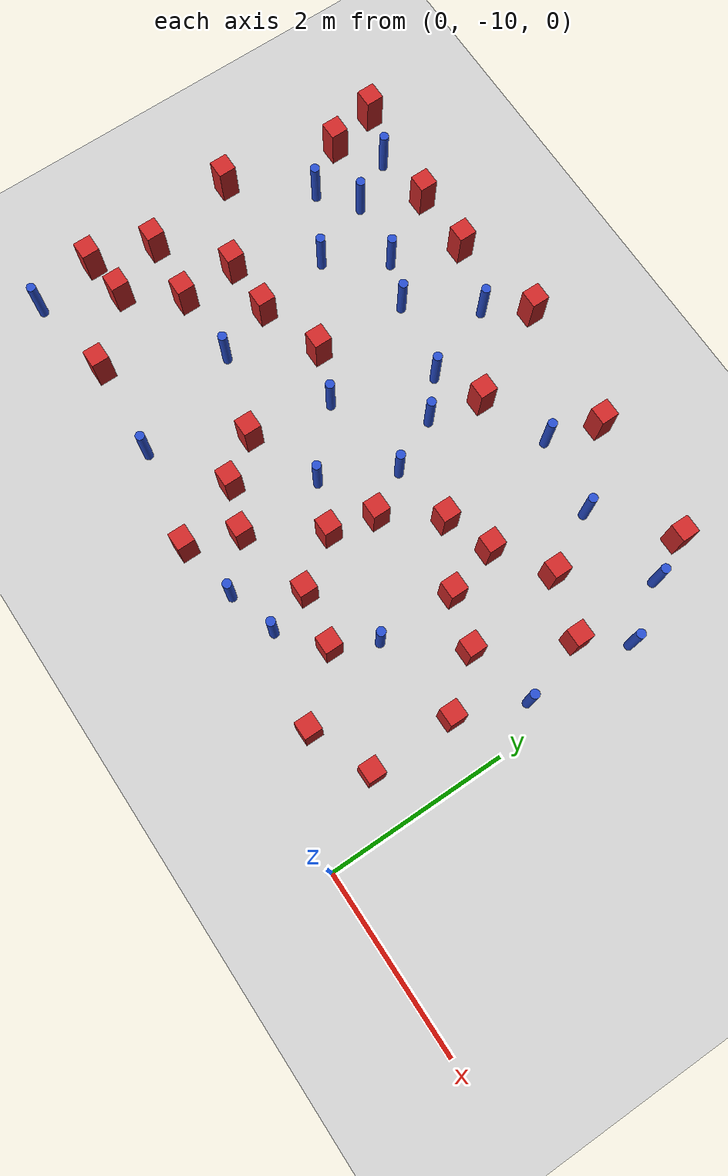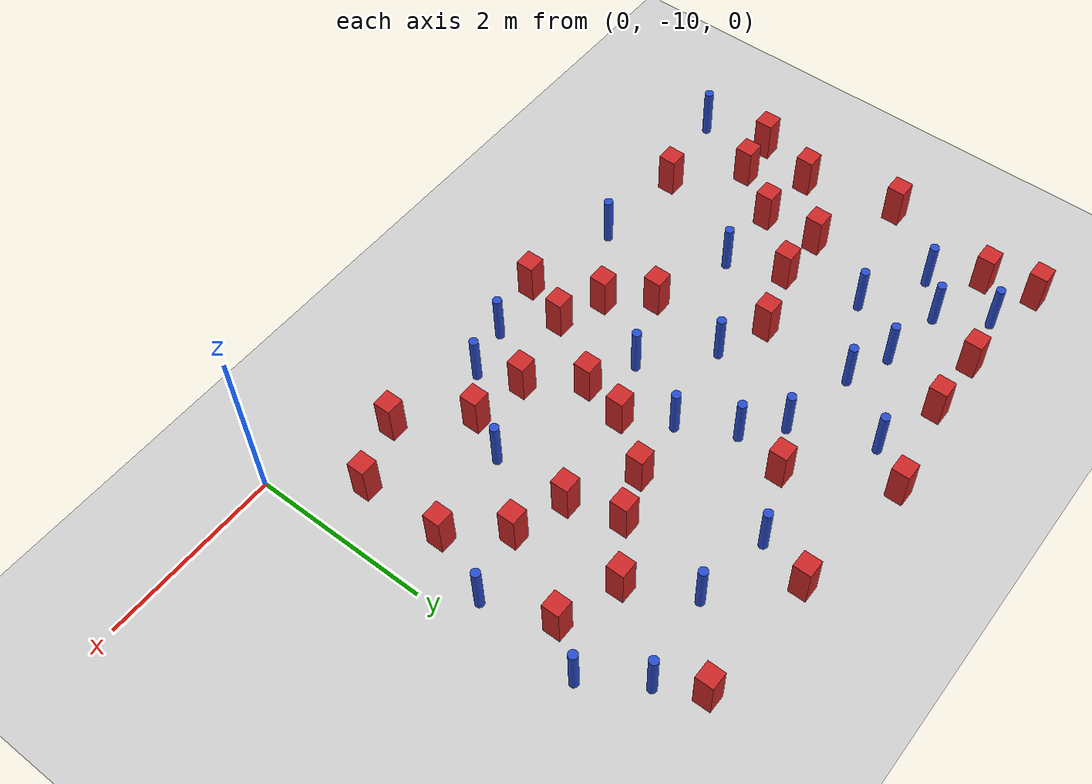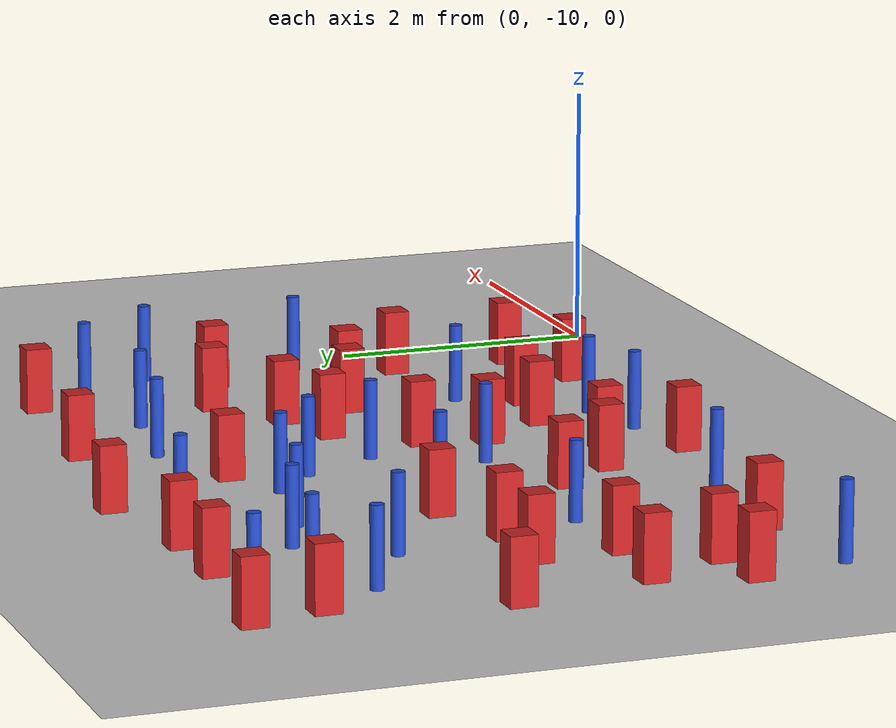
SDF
<sdf version="1.6">
 <world name="default">
  <model name="ground_plane">
   <static>1</static>
   <link name="link">
    <collision name="collision">
     <geometry><plane><normal>0 0 1</normal><size>100 100</size></plane></geometry>
     <surface><friction><ode><mu>100</mu><mu2>50</mu2></ode></friction></surface>
    </collision>
    <visual name="visual">
     <cast_shadows>0</cast_shadows>
     <geometry><plane><normal>0 0 1</normal><size>100 100</size></plane></geometry>
     <material>
      <ambient>1.0 1.0 1.0 1.0</ambient>
      <diffuse>0.8 0.8 0.8 1.0</diffuse>
      <specular>0.01 0.01 0.01 1.000000</specular>
     </material>
    </visual>
   </link>
  </model>
  <model name="square_post_obstacle15">
   <static>true</static>
   <pose>-2.44196828047 -8.70239548351 8.22691968438e-08 7.22125133819e-06 -7.54495500217e-07 2.29674213826e-05</pose>
   <link name="link">
    <pose>0 0 0.25 0 -0 0</pose>
    <inertial>
     <mass>100</mass>
     <inertia>
      <ixx>0.166667</ixx>
      <ixy>0</ixy>
      <ixz>0</ixz>
      <iyy>0.166667</iyy>
      <iyz>0</iyz>
      <izz>0.166667</izz>
     </inertia>
    </inertial>
    <collision name="collision"><geometry><box><size>.2 .2 .5</size></box></geometry></collision>
    <visual name="visual">
     <geometry><box><size>.2 .2 .5</size></box></geometry>
     <material>
      <script><name>Gazebo/Red</name><uri>file://media/materials/scripts/gazebo.material</uri></script>
     </material>
    </visual>
   </link>
  </model>
  <model name="square_post_obstacle24">
   <static>true</static>
   <pose>-2.24350808111 -5.14395207537 8.22691968438e-08 7.2212513382e-06 -7.54495500217e-07 2.29674213826e-05</pose>
   <link name="link">
    <pose>0 0 0.25 0 -0 0</pose>
    <inertial>
     <mass>100</mass>
     <inertia>
      <ixx>0.166667</ixx>
      <ixy>0</ixy>
      <ixz>0</ixz>
      <iyy>0.166667</iyy>
      <iyz>0</iyz>
      <izz>0.166667</izz>
     </inertia>
    </inertial>
    <collision name="collision"><geometry><box><size>.2 .2 .5</size></box></geometry></collision>
    <visual name="visual">
     <geometry><box><size>.2 .2 .5</size></box></geometry>
     <material>
      <script><name>Gazebo/Red</name><uri>file://media/materials/scripts/gazebo.material</uri></script>
     </material>
    </visual>
   </link>
  </model>
  <model name="pole_obstacle19">
   <static>true</static>
   <pose>-0.285638210329 -7.47282447171 2.88873142074e-08 -9.90536689618e-09 4.60219948994e-07 -1.20965994956e-07</pose>
   <link name="link">
    <pose>0 0 0.3 0 -0 0</pose>
    <inertial>
     <mass>1</mass>
     <inertia><ixx>0.145833</ixx><ixy>0</ixy><ixz>0</ixz><iyy>0.145833</iyy><iyz>0</iyz><izz>0.125</izz></inertia>
    </inertial>
    <collision name="collision">
     <geometry><cylinder><radius>0.05</radius><length>.6</length></cylinder></geometry>
    </collision>
    <visual name="visual">
     <geometry><cylinder><radius>0.05</radius><length>.6</length></cylinder></geometry>
     <material>
      <script><name>Gazebo/Blue</name><uri>file://media/materials/scripts/gazebo.material</uri></script>
     </material>
    </visual>
   </link>
  </model>
  <model name="pole_obstacle27">
   <static>true</static>
   <pose>-3.66514486487 -6.24917587034 2.88873142074e-08 -9.90536689859e-09 4.60219948989e-07 -1.20965994961e-07</pose>
   <link name="link">
    <pose>0 0 0.3 0 -0 0</pose>
    <inertial>
     <mass>1</mass>
     <inertia><ixx>0.145833</ixx><ixy>0</ixy><ixz>0</ixz><iyy>0.145833</iyy><iyz>0</iyz><izz>0.125</izz></inertia>
    </inertial>
    <collision name="collision">
     <geometry><cylinder><radius>0.05</radius><length>.6</length></cylinder></geometry>
    </collision>
    <visual name="visual">
     <geometry><cylinder><radius>0.05</radius><length>.6</length></cylinder></geometry>
     <material>
      <script><name>Gazebo/Blue</name><uri>file://media/materials/scripts/gazebo.material</uri></script>
     </material>
    </visual>
   </link>
  </model>
  <model name="pole_obstacle29">
   <static>true</static>
   <pose>-2.99520815477 -7.17016514407 2.88873142074e-08 -9.90536689859e-09 4.60219948989e-07 -1.20965994961e-07</pose>
   <link name="link">
    <pose>0 0 0.3 0 -0 0</pose>
    <inertial>
     <mass>1</mass>
     <inertia><ixx>0.145833</ixx><ixy>0</ixy><ixz>0</ixz><iyy>0.145833</iyy><iyz>0</iyz><izz>0.125</izz></inertia>
    </inertial>
    <collision name="collision">
     <geometry><cylinder><radius>0.05</radius><length>.6</length></cylinder></geometry>
    </collision>
    <visual name="visual">
     <geometry><cylinder><radius>0.05</radius><length>.6</length></cylinder></geometry>
     <material>
      <script><name>Gazebo/Blue</name><uri>file://media/materials/scripts/gazebo.material</uri></script>
     </material>
    </visual>
   </link>
  </model>
  <model name="square_post_obstacle36">
   <static>true</static>
   <pose>-3.16164344425 -6.00982008556 8.22691968438e-08 7.22125133819e-06 -7.54495500217e-07 2.29674213826e-05</pose>
   <link name="link">
    <pose>0 0 0.25 0 -0 0</pose>
    <inertial>
     <mass>100</mass>
     <inertia>
      <ixx>0.166667</ixx>
      <ixy>0</ixy>
      <ixz>0</ixz>
      <iyy>0.166667</iyy>
      <iyz>0</iyz>
      <izz>0.166667</izz>
     </inertia>
    </inertial>
    <collision name="collision"><geometry><box><size>.2 .2 .5</size></box></geometry></collision>
    <visual name="visual">
     <geometry><box><size>.2 .2 .5</size></box></geometry>
     <material>
      <script><name>Gazebo/Red</name><uri>file://media/materials/scripts/gazebo.material</uri></script>
     </material>
    </visual>
   </link>
  </model>
  <model name="pole_obstacle43">
   <static>true</static>
   <pose>-4.54498802081 -6.07642919012 2.88873142074e-08 -9.90536690842e-09 4.60219948965e-07 -1.20965994976e-07</pose>
   <link name="link">
    <pose>0 0 0.3 0 -0 0</pose>
    <inertial>
     <mass>1</mass>
     <inertia><ixx>0.145833</ixx><ixy>0</ixy><ixz>0</ixz><iyy>0.145833</iyy><iyz>0</iyz><izz>0.125</izz></inertia>
    </inertial>
    <collision name="collision">
     <geometry><cylinder><radius>0.05</radius><length>.6</length></cylinder></geometry>
    </collision>
    <visual name="visual">
     <geometry><cylinder><radius>0.05</radius><length>.6</length></cylinder></geometry>
     <material>
      <script><name>Gazebo/Blue</name><uri>file://media/materials/scripts/gazebo.material</uri></script>
     </material>
    </visual>
   </link>
  </model>
  <model name="square_post_obstacle41">
   <static>true</static>
   <pose>-0.527623908564 -6.72911399481 8.22691968438e-08 7.2212513382e-06 -7.54495500217e-07 2.29674213826e-05</pose>
   <link name="link">
    <pose>0 0 0.25 0 -0 0</pose>
    <inertial>
     <mass>100</mass>
     <inertia>
      <ixx>0.166667</ixx>
      <ixy>0</ixy>
      <ixz>0</ixz>
      <iyy>0.166667</iyy>
      <iyz>0</iyz>
      <izz>0.166667</izz>
     </inertia>
    </inertial>
    <collision name="collision"><geometry><box><size>.2 .2 .5</size></box></geometry></collision>
    <visual name="visual">
     <geometry><box><size>.2 .2 .5</size></box></geometry>
     <material>
      <script><name>Gazebo/Red</name><uri>file://media/materials/scripts/gazebo.material</uri></script>
     </material>
    </visual>
   </link>
  </model>
  <model name="square_post_obstacle43">
   <static>true</static>
   <pose>-0.570156672937 -9.15295373574 8.22691968438e-08 7.22125133819e-06 -7.54495500217e-07 2.29674213826e-05</pose>
   <link name="link">
    <pose>0 0 0.25 0 -0 0</pose>
    <inertial>
     <mass>100</mass>
     <inertia>
      <ixx>0.166667</ixx>
      <ixy>0</ixy>
      <ixz>0</ixz>
      <iyy>0.166667</iyy>
      <iyz>0</iyz>
      <izz>0.166667</izz>
     </inertia>
    </inertial>
    <collision name="collision"><geometry><box><size>.2 .2 .5</size></box></geometry></collision>
    <visual name="visual">
     <geometry><box><size>.2 .2 .5</size></box></geometry>
     <material>
      <script><name>Gazebo/Red</name><uri>file://media/materials/scripts/gazebo.material</uri></script>
     </material>
    </visual>
   </link>
  </model>
  <model name="square_post_obstacle55">
   <static>true</static>
   <pose>-1.19929644182 -6.50464743947 8.22691968438e-08 7.2212513382e-06 -7.54495500217e-07 2.29674213826e-05</pose>
   <link name="link">
    <pose>0 0 0.25 0 -0 0</pose>
    <inertial>
     <mass>100</mass>
     <inertia>
      <ixx>0.166667</ixx>
      <ixy>0</ixy>
      <ixz>0</ixz>
      <iyy>0.166667</iyy>
      <iyz>0</iyz>
      <izz>0.166667</izz>
     </inertia>
    </inertial>
    <collision name="collision"><geometry><box><size>.2 .2 .5</size></box></geometry></collision>
    <visual name="visual">
     <geometry><box><size>.2 .2 .5</size></box></geometry>
     <material>
      <script><name>Gazebo/Red</name><uri>file://media/materials/scripts/gazebo.material</uri></script>
     </material>
    </visual>
   </link>
  </model>
  <model name="pole_obstacle56">
   <static>true</static>
   <pose>-1.54996020465 -5.83506203627 2.88873142074e-08 -9.90536689852e-09 4.60219948989e-07 -1.2096599496e-07</pose>
   <link name="link">
    <pose>0 0 0.3 0 -0 0</pose>
    <inertial>
     <mass>1</mass>
     <inertia><ixx>0.145833</ixx><ixy>0</ixy><ixz>0</ixz><iyy>0.145833</iyy><iyz>0</iyz><izz>0.125</izz></inertia>
    </inertial>
    <collision name="collision">
     <geometry><cylinder><radius>0.05</radius><length>.6</length></cylinder></geometry>
    </collision>
    <visual name="visual">
     <geometry><cylinder><radius>0.05</radius><length>.6</length></cylinder></geometry>
     <material>
      <script><name>Gazebo/Blue</name><uri>file://media/materials/scripts/gazebo.material</uri></script>
     </material>
    </visual>
   </link>
  </model>
  <model name="square_post_obstacle62">
   <static>true</static>
   <pose>-6.32162918469 -8.54207892889 8.22691968438e-08 7.22125133819e-06 -7.54495500217e-07 2.29674213826e-05</pose>
   <link name="link">
    <pose>0 0 0.25 0 -0 0</pose>
    <inertial>
     <mass>100</mass>
     <inertia>
      <ixx>0.166667</ixx>
      <ixy>0</ixy>
      <ixz>0</ixz>
      <iyy>0.166667</iyy>
      <iyz>0</iyz>
      <izz>0.166667</izz>
     </inertia>
    </inertial>
    <collision name="collision"><geometry><box><size>.2 .2 .5</size></box></geometry></collision>
    <visual name="visual">
     <geometry><box><size>.2 .2 .5</size></box></geometry>
     <material>
      <script><name>Gazebo/Red</name><uri>file://media/materials/scripts/gazebo.material</uri></script>
     </material>
    </visual>
   </link>
  </model>
  <model name="square_post_obstacle68">
   <static>true</static>
   <pose>-5.3094120917 -7.35153134926 8.22691968438e-08 7.22125133819e-06 -7.54495500217e-07 2.29674213826e-05</pose>
   <link name="link">
    <pose>0 0 0.25 0 -0 0</pose>
    <inertial>
     <mass>100</mass>
     <inertia>
      <ixx>0.166667</ixx>
      <ixy>0</ixy>
      <ixz>0</ixz>
      <iyy>0.166667</iyy>
      <iyz>0</iyz>
      <izz>0.166667</izz>
     </inertia>
    </inertial>
    <collision name="collision"><geometry><box><size>.2 .2 .5</size></box></geometry></collision>
    <visual name="visual">
     <geometry><box><size>.2 .2 .5</size></box></geometry>
     <material>
      <script><name>Gazebo/Red</name><uri>file://media/materials/scripts/gazebo.material</uri></script>
     </material>
    </visual>
   </link>
  </model>
  <model name="square_post_obstacle69">
   <static>true</static>
   <pose>-1.25324452458 -9.43163976762 8.22691968438e-08 7.2212513382e-06 -7.54495500217e-07 2.29674213826e-05</pose>
   <link name="link">
    <pose>0 0 0.25 0 -0 0</pose>
    <inertial>
     <mass>100</mass>
     <inertia>
      <ixx>0.166667</ixx>
      <ixy>0</ixy>
      <ixz>0</ixz>
      <iyy>0.166667</iyy>
      <iyz>0</iyz>
      <izz>0.166667</izz>
     </inertia>
    </inertial>
    <collision name="collision"><geometry><box><size>.2 .2 .5</size></box></geometry></collision>
    <visual name="visual">
     <geometry><box><size>.2 .2 .5</size></box></geometry>
     <material>
      <script><name>Gazebo/Red</name><uri>file://media/materials/scripts/gazebo.material</uri></script>
     </material>
    </visual>
   </link>
  </model>
  <model name="square_post_obstacle71">
   <static>true</static>
   <pose>-0.582809859579 -8.20129889867 8.22691968438e-08 7.22125133819e-06 -7.54495500217e-07 2.29674213826e-05</pose>
   <link name="link">
    <pose>0 0 0.25 0 -0 0</pose>
    <inertial>
     <mass>100</mass>
     <inertia>
      <ixx>0.166667</ixx>
      <ixy>0</ixy>
      <ixz>0</ixz>
      <iyy>0.166667</iyy>
      <iyz>0</iyz>
      <izz>0.166667</izz>
     </inertia>
    </inertial>
    <collision name="collision"><geometry><box><size>.2 .2 .5</size></box></geometry></collision>
    <visual name="visual">
     <geometry><box><size>.2 .2 .5</size></box></geometry>
     <material>
      <script><name>Gazebo/Red</name><uri>file://media/materials/scripts/gazebo.material</uri></script>
     </material>
    </visual>
   </link>
  </model>
  <model name="square_post_obstacle74">
   <static>true</static>
   <pose>-4.17416462984 -8.25505402658 8.22691968438e-08 7.22125133819e-06 -7.54495500217e-07 2.29674213826e-05</pose>
   <link name="link">
    <pose>0 0 0.25 0 -0 0</pose>
    <inertial>
     <mass>100</mass>
     <inertia>
      <ixx>0.166667</ixx>
      <ixy>0</ixy>
      <ixz>0</ixz>
      <iyy>0.166667</iyy>
      <iyz>0</iyz>
      <izz>0.166667</izz>
     </inertia>
    </inertial>
    <collision name="collision"><geometry><box><size>.2 .2 .5</size></box></geometry></collision>
    <visual name="visual">
     <geometry><box><size>.2 .2 .5</size></box></geometry>
     <material>
      <script><name>Gazebo/Red</name><uri>file://media/materials/scripts/gazebo.material</uri></script>
     </material>
    </visual>
   </link>
  </model>
  <model name="square_post_obstacle76">
   <static>true</static>
   <pose>-5.69231735282 -9.15534222561 8.22691968438e-08 7.22125133819e-06 -7.54495500217e-07 2.29674213826e-05</pose>
   <link name="link">
    <pose>0 0 0.25 0 -0 0</pose>
    <inertial>
     <mass>100</mass>
     <inertia>
      <ixx>0.166667</ixx>
      <ixy>0</ixy>
      <ixz>0</ixz>
      <iyy>0.166667</iyy>
      <iyz>0</iyz>
      <izz>0.166667</izz>
     </inertia>
    </inertial>
    <collision name="collision"><geometry><box><size>.2 .2 .5</size></box></geometry></collision>
    <visual name="visual">
     <geometry><box><size>.2 .2 .5</size></box></geometry>
     <material>
      <script><name>Gazebo/Red</name><uri>file://media/materials/scripts/gazebo.material</uri></script>
     </material>
    </visual>
   </link>
  </model>
  <model name="square_post_obstacle79">
   <static>true</static>
   <pose>-5.92070315183 -7.35171085883 8.22691968438e-08 7.22125133819e-06 -7.54495500217e-07 2.29674213826e-05</pose>
   <link name="link">
    <pose>0 0 0.25 0 -0 0</pose>
    <inertial>
     <mass>100</mass>
     <inertia>
      <ixx>0.166667</ixx>
      <ixy>0</ixy>
      <ixz>0</ixz>
      <iyy>0.166667</iyy>
      <iyz>0</iyz>
      <izz>0.166667</izz>
     </inertia>
    </inertial>
    <collision name="collision"><geometry><box><size>.2 .2 .5</size></box></geometry></collision>
    <visual name="visual">
     <geometry><box><size>.2 .2 .5</size></box></geometry>
     <material>
      <script><name>Gazebo/Red</name><uri>file://media/materials/scripts/gazebo.material</uri></script>
     </material>
    </visual>
   </link>
  </model>
  <model name="square_post_obstacle95">
   <static>true</static>
   <pose>-1.77182817875 -6.89272841087 8.22691968438e-08 7.2212513382e-06 -7.54495500217e-07 2.29674213826e-05</pose>
   <link name="link">
    <pose>0 0 0.25 0 -0 0</pose>
    <inertial>
     <mass>100</mass>
     <inertia>
      <ixx>0.166667</ixx>
      <ixy>0</ixy>
      <ixz>0</ixz>
      <iyy>0.166667</iyy>
      <iyz>0</iyz>
      <izz>0.166667</izz>
     </inertia>
    </inertial>
    <collision name="collision"><geometry><box><size>.2 .2 .5</size></box></geometry></collision>
    <visual name="visual">
     <geometry><box><size>.2 .2 .5</size></box></geometry>
     <material>
      <script><name>Gazebo/Red</name><uri>file://media/materials/scripts/gazebo.material</uri></script>
     </material>
    </visual>
   </link>
  </model>
  <model name="pole_obstacle108">
   <static>true</static>
   <pose>-5.09391926338 -7.96933255755 2.88873142074e-08 -9.90536690264e-09 4.60219948979e-07 -1.20965994965e-07</pose>
   <link name="link">
    <pose>0 0 0.3 0 -0 0</pose>
    <inertial>
     <mass>1</mass>
     <inertia><ixx>0.145833</ixx><ixy>0</ixy><ixz>0</ixz><iyy>0.145833</iyy><iyz>0</iyz><izz>0.125</izz></inertia>
    </inertial>
    <collision name="collision">
     <geometry><cylinder><radius>0.05</radius><length>.6</length></cylinder></geometry>
    </collision>
    <visual name="visual">
     <geometry><cylinder><radius>0.05</radius><length>.6</length></cylinder></geometry>
     <material>
      <script><name>Gazebo/Blue</name><uri>file://media/materials/scripts/gazebo.material</uri></script>
     </material>
    </visual>
   </link>
  </model>
  <model name="pole_obstacle112">
   <static>true</static>
   <pose>-4.62886528642 -9.24579710947 2.88873142074e-08 -9.9053668967e-09 4.60219948993e-07 -1.20965994957e-07</pose>
   <link name="link">
    <pose>0 0 0.3 0 -0 0</pose>
    <inertial>
     <mass>1</mass>
     <inertia><ixx>0.145833</ixx><ixy>0</ixy><ixz>0</ixz><iyy>0.145833</iyy><iyz>0</iyz><izz>0.125</izz></inertia>
    </inertial>
    <collision name="collision">
     <geometry><cylinder><radius>0.05</radius><length>.6</length></cylinder></geometry>
    </collision>
    <visual name="visual">
     <geometry><cylinder><radius>0.05</radius><length>.6</length></cylinder></geometry>
     <material>
      <script><name>Gazebo/Blue</name><uri>file://media/materials/scripts/gazebo.material</uri></script>
     </material>
    </visual>
   </link>
  </model>
  <model name="square_post_obstacle100">
   <static>true</static>
   <pose>-5.89801449697 -7.98492176088 8.22691968438e-08 7.2212513382e-06 -7.54495500217e-07 2.29674213826e-05</pose>
   <link name="link">
    <pose>0 0 0.25 0 -0 0</pose>
    <inertial>
     <mass>100</mass>
     <inertia>
      <ixx>0.166667</ixx>
      <ixy>0</ixy>
      <ixz>0</ixz>
      <iyy>0.166667</iyy>
      <iyz>0</iyz>
      <izz>0.166667</izz>
     </inertia>
    </inertial>
    <collision name="collision"><geometry><box><size>.2 .2 .5</size></box></geometry></collision>
    <visual name="visual">
     <geometry><box><size>.2 .2 .5</size></box></geometry>
     <material>
      <script><name>Gazebo/Red</name><uri>file://media/materials/scripts/gazebo.material</uri></script>
     </material>
    </visual>
   </link>
  </model>
  <model name="square_post_obstacle105">
   <static>true</static>
   <pose>-2.83480768695 -8.15428051289 8.22691968438e-08 7.22125133819e-06 -7.54495500217e-07 2.29674213826e-05</pose>
   <link name="link">
    <pose>0 0 0.25 0 -0 0</pose>
    <inertial>
     <mass>100</mass>
     <inertia>
      <ixx>0.166667</ixx>
      <ixy>0</ixy>
      <ixz>0</ixz>
      <iyy>0.166667</iyy>
      <iyz>0</iyz>
      <izz>0.166667</izz>
     </inertia>
    </inertial>
    <collision name="collision"><geometry><box><size>.2 .2 .5</size></box></geometry></collision>
    <visual name="visual">
     <geometry><box><size>.2 .2 .5</size></box></geometry>
     <material>
      <script><name>Gazebo/Red</name><uri>file://media/materials/scripts/gazebo.material</uri></script>
     </material>
    </visual>
   </link>
  </model>
  <model name="square_post_obstacle109">
   <static>true</static>
   <pose>-2.71202834996 -7.65091946227 8.22691968438e-08 7.22125133819e-06 -7.54495500217e-07 2.29674213826e-05</pose>
   <link name="link">
    <pose>0 0 0.25 0 -0 0</pose>
    <inertial>
     <mass>100</mass>
     <inertia>
      <ixx>0.166667</ixx>
      <ixy>0</ixy>
      <ixz>0</ixz>
      <iyy>0.166667</iyy>
      <iyz>0</iyz>
      <izz>0.166667</izz>
     </inertia>
    </inertial>
    <collision name="collision"><geometry><box><size>.2 .2 .5</size></box></geometry></collision>
    <visual name="visual">
     <geometry><box><size>.2 .2 .5</size></box></geometry>
     <material>
      <script><name>Gazebo/Red</name><uri>file://media/materials/scripts/gazebo.material</uri></script>
     </material>
    </visual>
   </link>
  </model>
  <model name="square_post_obstacle111">
   <static>true</static>
   <pose>-6.68694841018 -5.04497759849 8.22691968438e-08 7.22125133819e-06 -7.54495500217e-07 2.29674213826e-05</pose>
   <link name="link">
    <pose>0 0 0.25 0 -0 0</pose>
    <inertial>
     <mass>100</mass>
     <inertia>
      <ixx>0.166667</ixx>
      <ixy>0</ixy>
      <ixz>0</ixz>
      <iyy>0.166667</iyy>
      <iyz>0</iyz>
      <izz>0.166667</izz>
     </inertia>
    </inertial>
    <collision name="collision"><geometry><box><size>.2 .2 .5</size></box></geometry></collision>
    <visual name="visual">
     <geometry><box><size>.2 .2 .5</size></box></geometry>
     <material>
      <script><name>Gazebo/Red</name><uri>file://media/materials/scripts/gazebo.material</uri></script>
     </material>
    </visual>
   </link>
  </model>
  <model name="square_post_obstacle114">
   <static>true</static>
   <pose>-6.82100663552 -8.60514113952 8.22691968438e-08 7.22125133819e-06 -7.54495500217e-07 2.29674213826e-05</pose>
   <link name="link">
    <pose>0 0 0.25 0 -0 0</pose>
    <inertial>
     <mass>100</mass>
     <inertia>
      <ixx>0.166667</ixx>
      <ixy>0</ixy>
      <ixz>0</ixz>
      <iyy>0.166667</iyy>
      <iyz>0</iyz>
      <izz>0.166667</izz>
     </inertia>
    </inertial>
    <collision name="collision"><geometry><box><size>.2 .2 .5</size></box></geometry></collision>
    <visual name="visual">
     <geometry><box><size>.2 .2 .5</size></box></geometry>
     <material>
      <script><name>Gazebo/Red</name><uri>file://media/materials/scripts/gazebo.material</uri></script>
     </material>
    </visual>
   </link>
  </model>
  <model name="pole_obstacle134">
   <static>true</static>
   <pose>-5.46988046382 -6.50454312156 2.88873142074e-08 -9.90536690842e-09 4.60219948965e-07 -1.20965994976e-07</pose>
   <link name="link">
    <pose>0 0 0.3 0 -0 0</pose>
    <inertial>
     <mass>1</mass>
     <inertia><ixx>0.145833</ixx><ixy>0</ixy><ixz>0</ixz><iyy>0.145833</iyy><iyz>0</iyz><izz>0.125</izz></inertia>
    </inertial>
    <collision name="collision">
     <geometry><cylinder><radius>0.05</radius><length>.6</length></cylinder></geometry>
    </collision>
    <visual name="visual">
     <geometry><cylinder><radius>0.05</radius><length>.6</length></cylinder></geometry>
     <material>
      <script><name>Gazebo/Blue</name><uri>file://media/materials/scripts/gazebo.material</uri></script>
     </material>
    </visual>
   </link>
  </model>
  <model name="square_post_obstacle124">
   <static>true</static>
   <pose>-1.02491280874 -7.65902034947 8.22691968438e-08 7.2212513382e-06 -7.54495500217e-07 2.29674213826e-05</pose>
   <link name="link">
    <pose>0 0 0.25 0 -0 0</pose>
    <inertial>
     <mass>100</mass>
     <inertia>
      <ixx>0.166667</ixx>
      <ixy>0</ixy>
      <ixz>0</ixz>
      <iyy>0.166667</iyy>
      <iyz>0</iyz>
      <izz>0.166667</izz>
     </inertia>
    </inertial>
    <collision name="collision"><geometry><box><size>.2 .2 .5</size></box></geometry></collision>
    <visual name="visual">
     <geometry><box><size>.2 .2 .5</size></box></geometry>
     <material>
      <script><name>Gazebo/Red</name><uri>file://media/materials/scripts/gazebo.material</uri></script>
     </material>
    </visual>
   </link>
  </model>
  <model name="square_post_obstacle125">
   <static>true</static>
   <pose>-1.60365678972 -7.47576219006 8.22691968438e-08 7.2212513382e-06 -7.54495500217e-07 2.29674213826e-05</pose>
   <link name="link">
    <pose>0 0 0.25 0 -0 0</pose>
    <inertial>
     <mass>100</mass>
     <inertia>
      <ixx>0.166667</ixx>
      <ixy>0</ixy>
      <ixz>0</ixz>
      <iyy>0.166667</iyy>
      <iyz>0</iyz>
      <izz>0.166667</izz>
     </inertia>
    </inertial>
    <collision name="collision"><geometry><box><size>.2 .2 .5</size></box></geometry></collision>
    <visual name="visual">
     <geometry><box><size>.2 .2 .5</size></box></geometry>
     <material>
      <script><name>Gazebo/Red</name><uri>file://media/materials/scripts/gazebo.material</uri></script>
     </material>
    </visual>
   </link>
  </model>
  <model name="pole_obstacle140">
   <static>true</static>
   <pose>-0.571295083559 -5.67847743243 2.88873142074e-08 -9.90536689661e-09 4.60219948993e-07 -1.20965994957e-07</pose>
   <link name="link">
    <pose>0 0 0.3 0 -0 0</pose>
    <inertial>
     <mass>1</mass>
     <inertia><ixx>0.145833</ixx><ixy>0</ixy><ixz>0</ixz><iyy>0.145833</iyy><iyz>0</iyz><izz>0.125</izz></inertia>
    </inertial>
    <collision name="collision">
     <geometry><cylinder><radius>0.05</radius><length>.6</length></cylinder></geometry>
    </collision>
    <visual name="visual">
     <geometry><cylinder><radius>0.05</radius><length>.6</length></cylinder></geometry>
     <material>
      <script><name>Gazebo/Blue</name><uri>file://media/materials/scripts/gazebo.material</uri></script>
     </material>
    </visual>
   </link>
  </model>
  <model name="pole_obstacle141">
   <static>true</static>
   <pose>-2.28483818722 -9.18477188342 2.88873142074e-08 -9.90536692318e-09 4.6021994893e-07 -1.20965994988e-07</pose>
   <link name="link">
    <pose>0 0 0.3 0 -0 0</pose>
    <inertial>
     <mass>1</mass>
     <inertia><ixx>0.145833</ixx><ixy>0</ixy><ixz>0</ixz><iyy>0.145833</iyy><iyz>0</iyz><izz>0.125</izz></inertia>
    </inertial>
    <collision name="collision">
     <geometry><cylinder><radius>0.05</radius><length>.6</length></cylinder></geometry>
    </collision>
    <visual name="visual">
     <geometry><cylinder><radius>0.05</radius><length>.6</length></cylinder></geometry>
     <material>
      <script><name>Gazebo/Blue</name><uri>file://media/materials/scripts/gazebo.material</uri></script>
     </material>
    </visual>
   </link>
  </model>
  <model name="square_post_obstacle126">
   <static>true</static>
   <pose>-3.69814163063 -4.9609423186 8.22691968438e-08 7.2212513382e-06 -7.54495500217e-07 2.29674213826e-05</pose>
   <link name="link">
    <pose>0 0 0.25 0 -0 0</pose>
    <inertial>
     <mass>100</mass>
     <inertia>
      <ixx>0.166667</ixx>
      <ixy>0</ixy>
      <ixz>0</ixz>
      <iyy>0.166667</iyy>
      <iyz>0</iyz>
      <izz>0.166667</izz>
     </inertia>
    </inertial>
    <collision name="collision"><geometry><box><size>.2 .2 .5</size></box></geometry></collision>
    <visual name="visual">
     <geometry><box><size>.2 .2 .5</size></box></geometry>
     <material>
      <script><name>Gazebo/Red</name><uri>file://media/materials/scripts/gazebo.material</uri></script>
     </material>
    </visual>
   </link>
  </model>
  <model name="pole_obstacle143">
   <static>true</static>
   <pose>-0.187585590599 -6.27459086799 2.88873142074e-08 -9.90536689711e-09 4.60219948992e-07 -1.2096599496e-07</pose>
   <link name="link">
    <pose>0 0 0.3 0 -0 0</pose>
    <inertial>
     <mass>1</mass>
     <inertia><ixx>0.145833</ixx><ixy>0</ixy><ixz>0</ixz><iyy>0.145833</iyy><iyz>0</iyz><izz>0.125</izz></inertia>
    </inertial>
    <collision name="collision">
     <geometry><cylinder><radius>0.05</radius><length>.6</length></cylinder></geometry>
    </collision>
    <visual name="visual">
     <geometry><cylinder><radius>0.05</radius><length>.6</length></cylinder></geometry>
     <material>
      <script><name>Gazebo/Blue</name><uri>file://media/materials/scripts/gazebo.material</uri></script>
     </material>
    </visual>
   </link>
  </model>
  <model name="square_post_obstacle139">
   <static>true</static>
   <pose>-3.31639846339 -8.90489423044 8.22691968438e-08 7.22125133819e-06 -7.54495500217e-07 2.29674213826e-05</pose>
   <link name="link">
    <pose>0 0 0.25 0 -0 0</pose>
    <inertial>
     <mass>100</mass>
     <inertia>
      <ixx>0.166667</ixx>
      <ixy>0</ixy>
      <ixz>0</ixz>
      <iyy>0.166667</iyy>
      <iyz>0</iyz>
      <izz>0.166667</izz>
     </inertia>
    </inertial>
    <collision name="collision"><geometry><box><size>.2 .2 .5</size></box></geometry></collision>
    <visual name="visual">
     <geometry><box><size>.2 .2 .5</size></box></geometry>
     <material>
      <script><name>Gazebo/Red</name><uri>file://media/materials/scripts/gazebo.material</uri></script>
     </material>
    </visual>
   </link>
  </model>
  <model name="pole_obstacle152">
   <static>true</static>
   <pose>-6.67549710035 -9.33510842553 2.88873142074e-08 -9.9053668967e-09 4.60219948993e-07 -1.20965994957e-07</pose>
   <link name="link">
    <pose>0 0 0.3 0 -0 0</pose>
    <inertial>
     <mass>1</mass>
     <inertia><ixx>0.145833</ixx><ixy>0</ixy><ixz>0</ixz><iyy>0.145833</iyy><iyz>0</iyz><izz>0.125</izz></inertia>
    </inertial>
    <collision name="collision">
     <geometry><cylinder><radius>0.05</radius><length>.6</length></cylinder></geometry>
    </collision>
    <visual name="visual">
     <geometry><cylinder><radius>0.05</radius><length>.6</length></cylinder></geometry>
     <material>
      <script><name>Gazebo/Blue</name><uri>file://media/materials/scripts/gazebo.material</uri></script>
     </material>
    </visual>
   </link>
  </model>
  <model name="pole_obstacle155">
   <static>true</static>
   <pose>-5.79412648311 -5.7727615719 2.88873142074e-08 -9.90536690842e-09 4.60219948965e-07 -1.20965994976e-07</pose>
   <link name="link">
    <pose>0 0 0.3 0 -0 0</pose>
    <inertial>
     <mass>1</mass>
     <inertia><ixx>0.145833</ixx><ixy>0</ixy><ixz>0</ixz><iyy>0.145833</iyy><iyz>0</iyz><izz>0.125</izz></inertia>
    </inertial>
    <collision name="collision">
     <geometry><cylinder><radius>0.05</radius><length>.6</length></cylinder></geometry>
    </collision>
    <visual name="visual">
     <geometry><cylinder><radius>0.05</radius><length>.6</length></cylinder></geometry>
     <material>
      <script><name>Gazebo/Blue</name><uri>file://media/materials/scripts/gazebo.material</uri></script>
     </material>
    </visual>
   </link>
  </model>
  <model name="square_post_obstacle146">
   <static>true</static>
   <pose>-3.83016680718 -8.70994783081 8.22691968438e-08 7.22125133819e-06 -7.54495500217e-07 2.29674213826e-05</pose>
   <link name="link">
    <pose>0 0 0.25 0 -0 0</pose>
    <inertial>
     <mass>100</mass>
     <inertia>
      <ixx>0.166667</ixx>
      <ixy>0</ixy>
      <ixz>0</ixz>
      <iyy>0.166667</iyy>
      <iyz>0</iyz>
      <izz>0.166667</izz>
     </inertia>
    </inertial>
    <collision name="collision"><geometry><box><size>.2 .2 .5</size></box></geometry></collision>
    <visual name="visual">
     <geometry><box><size>.2 .2 .5</size></box></geometry>
     <material>
      <script><name>Gazebo/Red</name><uri>file://media/materials/scripts/gazebo.material</uri></script>
     </material>
    </visual>
   </link>
  </model>
  <model name="square_post_obstacle148">
   <static>true</static>
   <pose>-4.58430557162 -7.11863301673 8.22691968438e-08 7.2212513382e-06 -7.54495500217e-07 2.29674213826e-05</pose>
   <link name="link">
    <pose>0 0 0.25 0 -0 0</pose>
    <inertial>
     <mass>100</mass>
     <inertia>
      <ixx>0.166667</ixx>
      <ixy>0</ixy>
      <ixz>0</ixz>
      <iyy>0.166667</iyy>
      <iyz>0</iyz>
      <izz>0.166667</izz>
     </inertia>
    </inertial>
    <collision name="collision"><geometry><box><size>.2 .2 .5</size></box></geometry></collision>
    <visual name="visual">
     <geometry><box><size>.2 .2 .5</size></box></geometry>
     <material>
      <script><name>Gazebo/Red</name><uri>file://media/materials/scripts/gazebo.material</uri></script>
     </material>
    </visual>
   </link>
  </model>
  <model name="square_post_obstacle158">
   <static>true</static>
   <pose>-6.56021498037 -5.59696169649 8.22691968438e-08 7.22125133819e-06 -7.54495500217e-07 2.29674213826e-05</pose>
   <link name="link">
    <pose>0 0 0.25 0 -0 0</pose>
    <inertial>
     <mass>100</mass>
     <inertia>
      <ixx>0.166667</ixx>
      <ixy>0</ixy>
      <ixz>0</ixz>
      <iyy>0.166667</iyy>
      <iyz>0</iyz>
      <izz>0.166667</izz>
     </inertia>
    </inertial>
    <collision name="collision"><geometry><box><size>.2 .2 .5</size></box></geometry></collision>
    <visual name="visual">
     <geometry><box><size>.2 .2 .5</size></box></geometry>
     <material>
      <script><name>Gazebo/Red</name><uri>file://media/materials/scripts/gazebo.material</uri></script>
     </material>
    </visual>
   </link>
  </model>
  <model name="pole_obstacle169">
   <static>true</static>
   <pose>-6.11103454098 -5.25361111511 2.88873142074e-08 -9.90536690842e-09 4.60219948965e-07 -1.20965994976e-07</pose>
   <link name="link">
    <pose>0 0 0.3 0 -0 0</pose>
    <inertial>
     <mass>1</mass>
     <inertia><ixx>0.145833</ixx><ixy>0</ixy><ixz>0</ixz><iyy>0.145833</iyy><iyz>0</iyz><izz>0.125</izz></inertia>
    </inertial>
    <collision name="collision">
     <geometry><cylinder><radius>0.05</radius><length>.6</length></cylinder></geometry>
    </collision>
    <visual name="visual">
     <geometry><cylinder><radius>0.05</radius><length>.6</length></cylinder></geometry>
     <material>
      <script><name>Gazebo/Blue</name><uri>file://media/materials/scripts/gazebo.material</uri></script>
     </material>
    </visual>
   </link>
  </model>
  <model name="square_post_obstacle164">
   <static>true</static>
   <pose>-6.61533989159 -7.92181818547 8.22691968438e-08 7.2212513382e-06 -7.54495500217e-07 2.29674213826e-05</pose>
   <link name="link">
    <pose>0 0 0.25 0 -0 0</pose>
    <inertial>
     <mass>100</mass>
     <inertia>
      <ixx>0.166667</ixx>
      <ixy>0</ixy>
      <ixz>0</ixz>
      <iyy>0.166667</iyy>
      <iyz>0</iyz>
      <izz>0.166667</izz>
     </inertia>
    </inertial>
    <collision name="collision"><geometry><box><size>.2 .2 .5</size></box></geometry></collision>
    <visual name="visual">
     <geometry><box><size>.2 .2 .5</size></box></geometry>
     <material>
      <script><name>Gazebo/Red</name><uri>file://media/materials/scripts/gazebo.material</uri></script>
     </material>
    </visual>
   </link>
  </model>
  <model name="pole_obstacle176">
   <static>true</static>
   <pose>-2.41617502306 -5.70136459745 2.88873142074e-08 -9.90536689859e-09 4.60219948989e-07 -1.20965994961e-07</pose>
   <link name="link">
    <pose>0 0 0.3 0 -0 0</pose>
    <inertial>
     <mass>1</mass>
     <inertia><ixx>0.145833</ixx><ixy>0</ixy><ixz>0</ixz><iyy>0.145833</iyy><iyz>0</iyz><izz>0.125</izz></inertia>
    </inertial>
    <collision name="collision">
     <geometry><cylinder><radius>0.05</radius><length>.6</length></cylinder></geometry>
    </collision>
    <visual name="visual">
     <geometry><cylinder><radius>0.05</radius><length>.6</length></cylinder></geometry>
     <material>
      <script><name>Gazebo/Blue</name><uri>file://media/materials/scripts/gazebo.material</uri></script>
     </material>
    </visual>
   </link>
  </model>
  <model name="pole_obstacle180">
   <static>true</static>
   <pose>-3.37257829546 -7.93599306364 2.88873142074e-08 -9.90536689859e-09 4.60219948989e-07 -1.20965994961e-07</pose>
   <link name="link">
    <pose>0 0 0.3 0 -0 0</pose>
    <inertial>
     <mass>1</mass>
     <inertia><ixx>0.145833</ixx><ixy>0</ixy><ixz>0</ixz><iyy>0.145833</iyy><iyz>0</iyz><izz>0.125</izz></inertia>
    </inertial>
    <collision name="collision">
     <geometry><cylinder><radius>0.05</radius><length>.6</length></cylinder></geometry>
    </collision>
    <visual name="visual">
     <geometry><cylinder><radius>0.05</radius><length>.6</length></cylinder></geometry>
     <material>
      <script><name>Gazebo/Blue</name><uri>file://media/materials/scripts/gazebo.material</uri></script>
     </material>
    </visual>
   </link>
  </model>
  <model name="pole_obstacle182">
   <static>true</static>
   <pose>-6.20245844992 -6.09270767255 2.88873142074e-08 -9.90536690842e-09 4.60219948965e-07 -1.20965994976e-07</pose>
   <link name="link">
    <pose>0 0 0.3 0 -0 0</pose>
    <inertial>
     <mass>1</mass>
     <inertia><ixx>0.145833</ixx><ixy>0</ixy><ixz>0</ixz><iyy>0.145833</iyy><iyz>0</iyz><izz>0.125</izz></inertia>
    </inertial>
    <collision name="collision">
     <geometry><cylinder><radius>0.05</radius><length>.6</length></cylinder></geometry>
    </collision>
    <visual name="visual">
     <geometry><cylinder><radius>0.05</radius><length>.6</length></cylinder></geometry>
     <material>
      <script><name>Gazebo/Blue</name><uri>file://media/materials/scripts/gazebo.material</uri></script>
     </material>
    </visual>
   </link>
  </model>
  <model name="square_post_obstacle172">
   <static>true</static>
   <pose>-1.83323143452 -8.80850292479 8.22691968438e-08 7.2212513382e-06 -7.54495500217e-07 2.29674213826e-05</pose>
   <link name="link">
    <pose>0 0 0.25 0 -0 0</pose>
    <inertial>
     <mass>100</mass>
     <inertia>
      <ixx>0.166667</ixx>
      <ixy>0</ixy>
      <ixz>0</ixz>
      <iyy>0.166667</iyy>
      <iyz>0</iyz>
      <izz>0.166667</izz>
     </inertia>
    </inertial>
    <collision name="collision"><geometry><box><size>.2 .2 .5</size></box></geometry></collision>
    <visual name="visual">
     <geometry><box><size>.2 .2 .5</size></box></geometry>
     <material>
      <script><name>Gazebo/Red</name><uri>file://media/materials/scripts/gazebo.material</uri></script>
     </material>
    </visual>
   </link>
  </model>
  <model name="pole_obstacle185">
   <static>true</static>
   <pose>-2.8401514568 -9.33604334286 2.88873142074e-08 -9.90536692318e-09 4.6021994893e-07 -1.20965994988e-07</pose>
   <link name="link">
    <pose>0 0 0.3 0 -0 0</pose>
    <inertial>
     <mass>1</mass>
     <inertia><ixx>0.145833</ixx><ixy>0</ixy><ixz>0</ixz><iyy>0.145833</iyy><iyz>0</iyz><izz>0.125</izz></inertia>
    </inertial>
    <collision name="collision">
     <geometry><cylinder><radius>0.05</radius><length>.6</length></cylinder></geometry>
    </collision>
    <visual name="visual">
     <geometry><cylinder><radius>0.05</radius><length>.6</length></cylinder></geometry>
     <material>
      <script><name>Gazebo/Blue</name><uri>file://media/materials/scripts/gazebo.material</uri></script>
     </material>
    </visual>
   </link>
  </model>
  <model name="square_post_obstacle173">
   <static>true</static>
   <pose>-4.75481197896 -5.15251266668 8.22691968438e-08 7.22125133819e-06 -7.54495500217e-07 2.29674213826e-05</pose>
   <link name="link">
    <pose>0 0 0.25 0 -0 0</pose>
    <inertial>
     <mass>100</mass>
     <inertia>
      <ixx>0.166667</ixx>
      <ixy>0</ixy>
      <ixz>0</ixz>
      <iyy>0.166667</iyy>
      <iyz>0</iyz>
      <izz>0.166667</izz>
     </inertia>
    </inertial>
    <collision name="collision"><geometry><box><size>.2 .2 .5</size></box></geometry></collision>
    <visual name="visual">
     <geometry><box><size>.2 .2 .5</size></box></geometry>
     <material>
      <script><name>Gazebo/Red</name><uri>file://media/materials/scripts/gazebo.material</uri></script>
     </material>
    </visual>
   </link>
  </model>
  <model name="square_post_obstacle183">
   <static>true</static>
   <pose>-3.52172500285 -9.45458317808 8.22691968438e-08 7.22125133819e-06 -7.54495500217e-07 2.29674213826e-05</pose>
   <link name="link">
    <pose>0 0 0.25 0 -0 0</pose>
    <inertial>
     <mass>100</mass>
     <inertia>
      <ixx>0.166667</ixx>
      <ixy>0</ixy>
      <ixz>0</ixz>
      <iyy>0.166667</iyy>
      <iyz>0</iyz>
      <izz>0.166667</izz>
     </inertia>
    </inertial>
    <collision name="collision"><geometry><box><size>.2 .2 .5</size></box></geometry></collision>
    <visual name="visual">
     <geometry><box><size>.2 .2 .5</size></box></geometry>
     <material>
      <script><name>Gazebo/Red</name><uri>file://media/materials/scripts/gazebo.material</uri></script>
     </material>
    </visual>
   </link>
  </model>
  <model name="square_post_obstacle187">
   <static>true</static>
   <pose>-6.84182753768 -6.87321420465 8.22691968438e-08 7.2212513382e-06 -7.54495500217e-07 2.29674213826e-05</pose>
   <link name="link">
    <pose>0 0 0.25 0 -0 0</pose>
    <inertial>
     <mass>100</mass>
     <inertia>
      <ixx>0.166667</ixx>
      <ixy>0</ixy>
      <ixz>0</ixz>
      <iyy>0.166667</iyy>
      <iyz>0</iyz>
      <izz>0.166667</izz>
     </inertia>
    </inertial>
    <collision name="collision"><geometry><box><size>.2 .2 .5</size></box></geometry></collision>
    <visual name="visual">
     <geometry><box><size>.2 .2 .5</size></box></geometry>
     <material>
      <script><name>Gazebo/Red</name><uri>file://media/materials/scripts/gazebo.material</uri></script>
     </material>
    </visual>
   </link>
  </model>
  <model name="square_post_obstacle192">
   <static>true</static>
   <pose>-0.799171532541 -5.22667061891 8.22691968438e-08 7.22125133819e-06 -7.54495500217e-07 2.29674213826e-05</pose>
   <link name="link">
    <pose>0 0 0.25 0 -0 0</pose>
    <inertial>
     <mass>100</mass>
     <inertia>
      <ixx>0.166667</ixx>
      <ixy>0</ixy>
      <ixz>0</ixz>
      <iyy>0.166667</iyy>
      <iyz>0</iyz>
      <izz>0.166667</izz>
     </inertia>
    </inertial>
    <collision name="collision"><geometry><box><size>.2 .2 .5</size></box></geometry></collision>
    <visual name="visual">
     <geometry><box><size>.2 .2 .5</size></box></geometry>
     <material>
      <script><name>Gazebo/Red</name><uri>file://media/materials/scripts/gazebo.material</uri></script>
     </material>
    </visual>
   </link>
  </model>
  <model name="pole_obstacle192">
   <static>true</static>
   <pose>-4.02847149126 -7.33956463803 2.88873142074e-08 -9.90536691069e-09 4.6021994896e-07 -1.20965994979e-07</pose>
   <link name="link">
    <pose>0 0 0.3 0 -0 0</pose>
    <inertial>
     <mass>1</mass>
     <inertia><ixx>0.145833</ixx><ixy>0</ixy><ixz>0</ixz><iyy>0.145833</iyy><iyz>0</iyz><izz>0.125</izz></inertia>
    </inertial>
    <collision name="collision">
     <geometry><cylinder><radius>0.05</radius><length>.6</length></cylinder></geometry>
    </collision>
    <visual name="visual">
     <geometry><cylinder><radius>0.05</radius><length>.6</length></cylinder></geometry>
     <material>
      <script><name>Gazebo/Blue</name><uri>file://media/materials/scripts/gazebo.material</uri></script>
     </material>
    </visual>
   </link>
  </model>
  <model name="square_post_obstacle205">
   <static>true</static>
   <pose>-5.48155206269 -5.15752399216 8.22691968438e-08 7.22125133819e-06 -7.54495500217e-07 2.29674213826e-05</pose>
   <link name="link">
    <pose>0 0 0.25 0 -0 0</pose>
    <inertial>
     <mass>100</mass>
     <inertia>
      <ixx>0.166667</ixx>
      <ixy>0</ixy>
      <ixz>0</ixz>
      <iyy>0.166667</iyy>
      <iyz>0</iyz>
      <izz>0.166667</izz>
     </inertia>
    </inertial>
    <collision name="collision"><geometry><box><size>.2 .2 .5</size></box></geometry></collision>
    <visual name="visual">
     <geometry><box><size>.2 .2 .5</size></box></geometry>
     <material>
      <script><name>Gazebo/Red</name><uri>file://media/materials/scripts/gazebo.material</uri></script>
     </material>
    </visual>
   </link>
  </model>
  <model name="pole_obstacle198">
   <static>true</static>
   <pose>-5.04144812192 -5.87876278413 2.88873142074e-08 -9.90536690842e-09 4.60219948965e-07 -1.20965994976e-07</pose>
   <link name="link">
    <pose>0 0 0.3 0 -0 0</pose>
    <inertial>
     <mass>1</mass>
     <inertia><ixx>0.145833</ixx><ixy>0</ixy><ixz>0</ixz><iyy>0.145833</iyy><iyz>0</iyz><izz>0.125</izz></inertia>
    </inertial>
    <collision name="collision">
     <geometry><cylinder><radius>0.05</radius><length>.6</length></cylinder></geometry>
    </collision>
    <visual name="visual">
     <geometry><cylinder><radius>0.05</radius><length>.6</length></cylinder></geometry>
     <material>
      <script><name>Gazebo/Blue</name><uri>file://media/materials/scripts/gazebo.material</uri></script>
     </material>
    </visual>
   </link>
  </model>
  <model name="pole_obstacle199">
   <static>true</static>
   <pose>-1.60605817985 -8.35056919813 2.88873142074e-08 -9.90536690474e-09 4.60219948974e-07 -1.2096599497e-07</pose>
   <link name="link">
    <pose>0 0 0.3 0 -0 0</pose>
    <inertial>
     <mass>1</mass>
     <inertia><ixx>0.145833</ixx><ixy>0</ixy><ixz>0</ixz><iyy>0.145833</iyy><iyz>0</iyz><izz>0.125</izz></inertia>
    </inertial>
    <collision name="collision">
     <geometry><cylinder><radius>0.05</radius><length>.6</length></cylinder></geometry>
    </collision>
    <visual name="visual">
     <geometry><cylinder><radius>0.05</radius><length>.6</length></cylinder></geometry>
     <material>
      <script><name>Gazebo/Blue</name><uri>file://media/materials/scripts/gazebo.material</uri></script>
     </material>
    </visual>
   </link>
  </model>
  <model name="pole_obstacle215">
   <static>true</static>
   <pose>-4.01367924379 -5.38956523484 2.88873142074e-08 -9.90536691069e-09 4.6021994896e-07 -1.20965994979e-07</pose>
   <link name="link">
    <pose>0 0 0.3 0 -0 0</pose>
    <inertial>
     <mass>1</mass>
     <inertia><ixx>0.145833</ixx><ixy>0</ixy><ixz>0</ixz><iyy>0.145833</iyy><iyz>0</iyz><izz>0.125</izz></inertia>
    </inertial>
    <collision name="collision">
     <geometry><cylinder><radius>0.05</radius><length>.6</length></cylinder></geometry>
    </collision>
    <visual name="visual">
     <geometry><cylinder><radius>0.05</radius><length>.6</length></cylinder></geometry>
     <material>
      <script><name>Gazebo/Blue</name><uri>file://media/materials/scripts/gazebo.material</uri></script>
     </material>
    </visual>
   </link>
  </model>
  <model name="square_post_obstacle211">
   <static>true</static>
   <pose>-2.28371228648 -7.08734542995 8.22691968438e-08 7.2212513382e-06 -7.54495500217e-07 2.29674213826e-05</pose>
   <link name="link">
    <pose>0 0 0.25 0 -0 0</pose>
    <inertial>
     <mass>100</mass>
     <inertia>
      <ixx>0.166667</ixx>
      <ixy>0</ixy>
      <ixz>0</ixz>
      <iyy>0.166667</iyy>
      <iyz>0</iyz>
      <izz>0.166667</izz>
     </inertia>
    </inertial>
    <collision name="collision"><geometry><box><size>.2 .2 .5</size></box></geometry></collision>
    <visual name="visual">
     <geometry><box><size>.2 .2 .5</size></box></geometry>
     <material>
      <script><name>Gazebo/Red</name><uri>file://media/materials/scripts/gazebo.material</uri></script>
     </material>
    </visual>
   </link>
  </model>
  <model name="pole_obstacle220">
   <static>true</static>
   <pose>-3.29173999087 -6.58594997959 2.88873142074e-08 -9.90536689859e-09 4.60219948989e-07 -1.20965994961e-07</pose>
   <link name="link">
    <pose>0 0 0.3 0 -0 0</pose>
    <inertial>
     <mass>1</mass>
     <inertia><ixx>0.145833</ixx><ixy>0</ixy><ixz>0</ixz><iyy>0.145833</iyy><iyz>0</iyz><izz>0.125</izz></inertia>
    </inertial>
    <collision name="collision">
     <geometry><cylinder><radius>0.05</radius><length>.6</length></cylinder></geometry>
    </collision>
    <visual name="visual">
     <geometry><cylinder><radius>0.05</radius><length>.6</length></cylinder></geometry>
     <material>
      <script><name>Gazebo/Blue</name><uri>file://media/materials/scripts/gazebo.material</uri></script>
     </material>
    </visual>
   </link>
  </model>
 </world>
</sdf>
